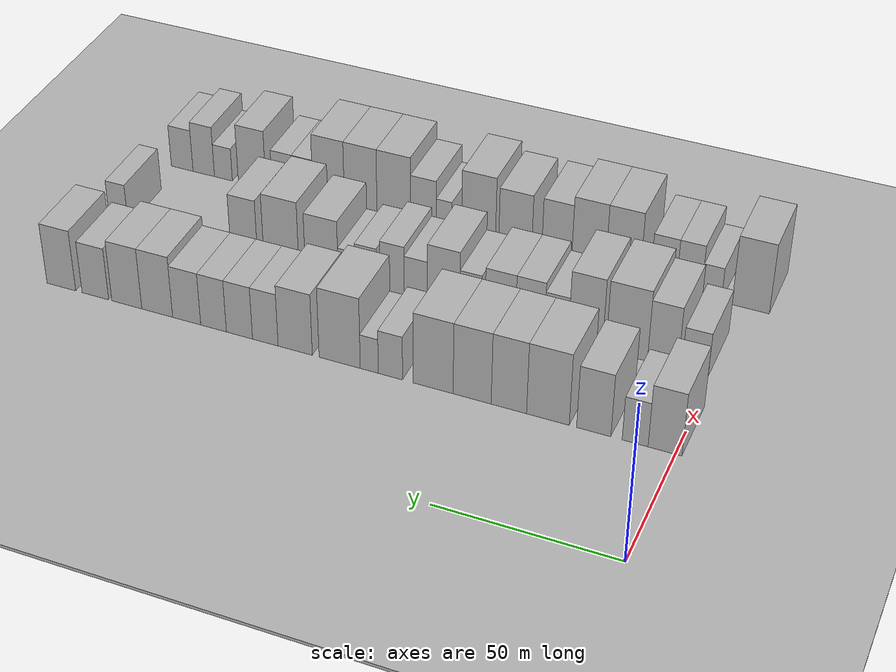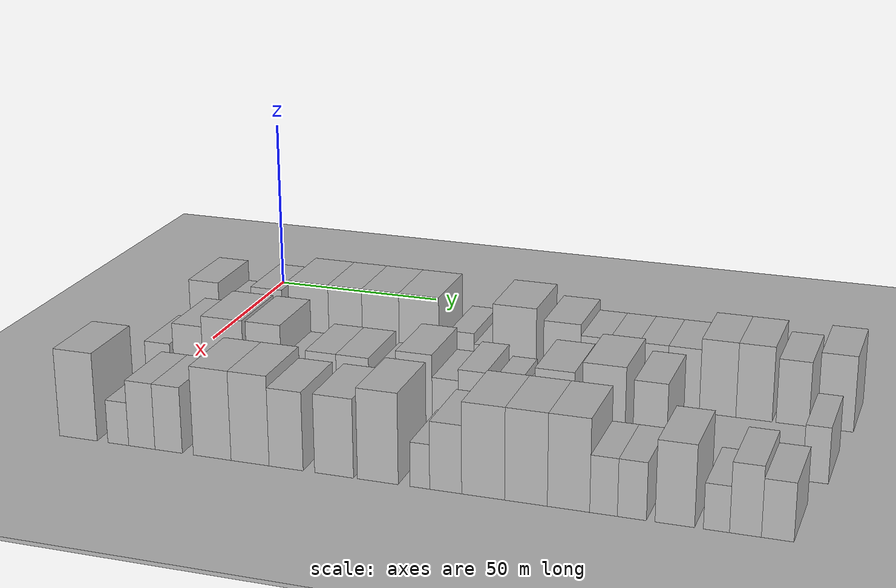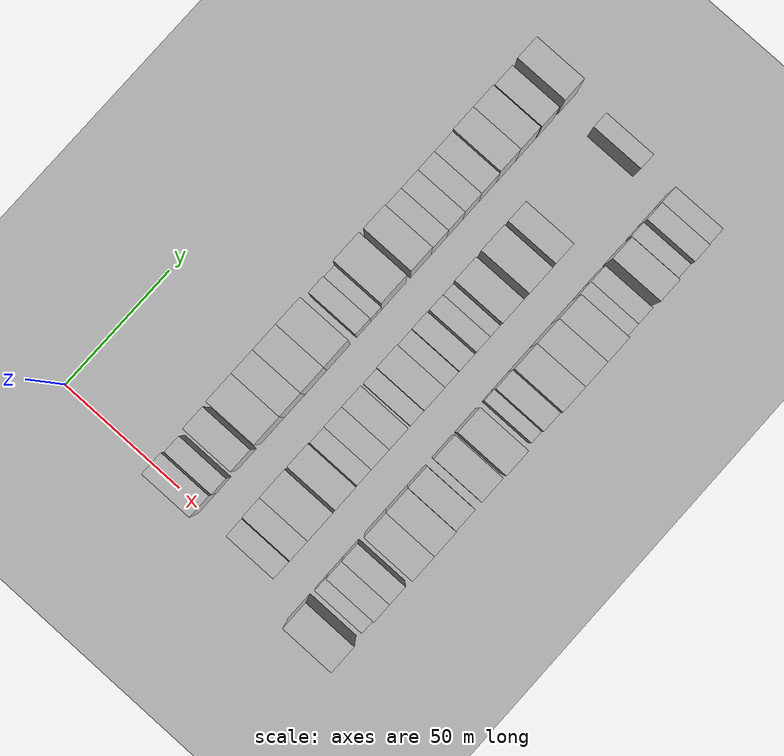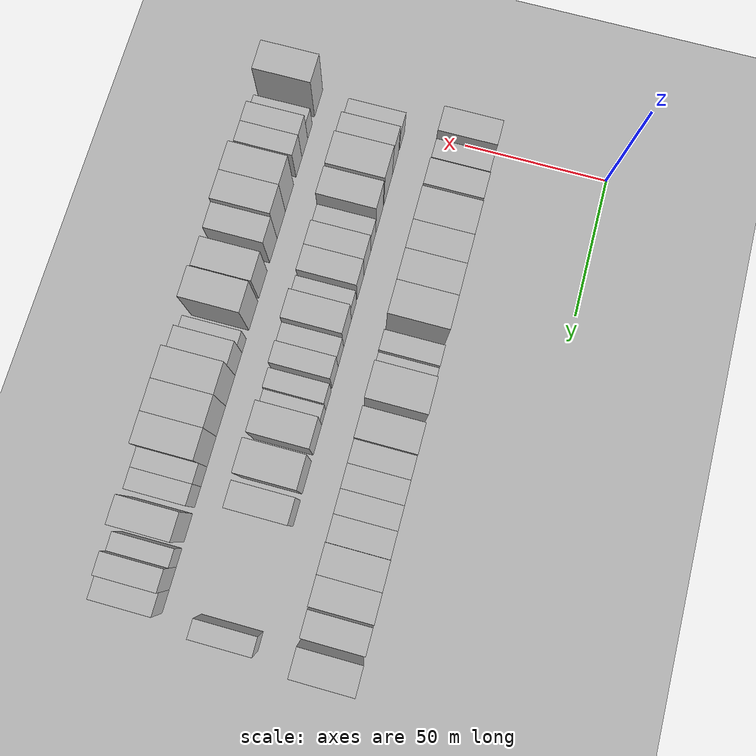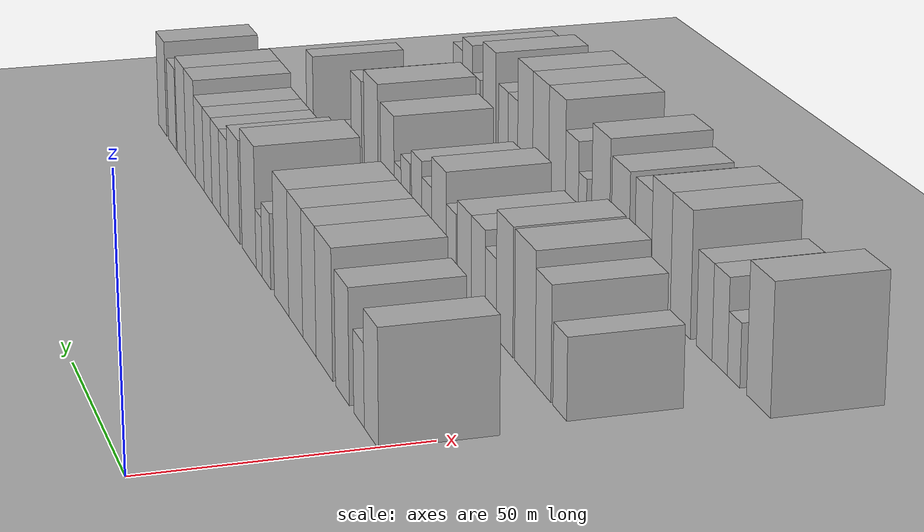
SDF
<sdf version="1.6">
 <world name="default">
  <include><name>ground_plane_1</name><uri>model://HANNAS_ground_plane</uri></include>
  <include>
   <name>ground_plane_2</name>
   <uri>model://HANNAS_ground_plane</uri>
   <pose>100 0 0  0 0 0</pose>
  </include>
  <model name="building_39">
   <static>1</static>
   <pose>50.0000 2.6917 0 0.000000 0.000000 0.000000</pose>
   <link name="link">
    <pose>0 0 10.50 0 0 0</pose>
    <collision name="collision"><geometry><box><size>20.0000 8.9184 21.0000</size></box></geometry></collision>
    <visual name="visual">
     <cast_shadows>0</cast_shadows>
     <geometry><box><size>20.0000 8.9184 21.0000</size></box></geometry>
     <material>
      <script>
       <uri>model://HANNAS_wall/materials/scripts</uri>
       <uri>model://HANNAS_wall/materials/textures</uri>
       <name>vrc/HANNAS_wall</name>
      </script>
     </material>
    </visual>
   </link>
  </model>
  <model name="building_40">
   <static>1</static>
   <pose>50.0000 10.5797 0 0.000000 0.000000 0.000000</pose>
   <link name="link">
    <pose>0 0 7.50 0 0 0</pose>
    <collision name="collision"><geometry><box><size>20.0000 6.8577 15.0000</size></box></geometry></collision>
    <visual name="visual">
     <cast_shadows>0</cast_shadows>
     <geometry><box><size>20.0000 6.8577 15.0000</size></box></geometry>
     <material>
      <script>
       <uri>model://HANNAS_wall/materials/scripts</uri>
       <uri>model://HANNAS_wall/materials/textures</uri>
       <name>vrc/HANNAS_wall</name>
      </script>
     </material>
    </visual>
   </link>
  </model>
  <model name="building_41">
   <static>1</static>
   <pose>50.0000 21.6097 0 0.000000 0.000000 0.000000</pose>
   <link name="link">
    <pose>0 0 10.50 0 0 0</pose>
    <collision name="collision"><geometry><box><size>20.0000 9.2021 21.0000</size></box></geometry></collision>
    <visual name="visual">
     <cast_shadows>0</cast_shadows>
     <geometry><box><size>20.0000 9.2021 21.0000</size></box></geometry>
     <material>
      <script>
       <uri>model://HANNAS_wall/materials/scripts</uri>
       <uri>model://HANNAS_wall/materials/textures</uri>
       <name>vrc/HANNAS_wall</name>
      </script>
     </material>
    </visual>
   </link>
  </model>
  <model name="building_42">
   <static>1</static>
   <pose>50.0000 34.0214 0 0.000000 0.000000 0.000000</pose>
   <link name="link">
    <pose>0 0 12.00 0 0 0</pose>
    <collision name="collision"><geometry><box><size>20.0000 11.6214 24.0000</size></box></geometry></collision>
    <visual name="visual">
     <cast_shadows>0</cast_shadows>
     <geometry><box><size>20.0000 11.6214 24.0000</size></box></geometry>
     <material>
      <script>
       <uri>model://HANNAS_wall/materials/scripts</uri>
       <uri>model://HANNAS_wall/materials/textures</uri>
       <name>vrc/HANNAS_wall</name>
      </script>
     </material>
    </visual>
   </link>
  </model>
  <model name="building_43">
   <static>1</static>
   <pose>50.0000 44.7159 0 0.000000 0.000000 0.000000</pose>
   <link name="link">
    <pose>0 0 12.00 0 0 0</pose>
    <collision name="collision"><geometry><box><size>20.0000 9.7676 24.0000</size></box></geometry></collision>
    <visual name="visual">
     <cast_shadows>0</cast_shadows>
     <geometry><box><size>20.0000 9.7676 24.0000</size></box></geometry>
     <material>
      <script>
       <uri>model://HANNAS_wall/materials/scripts</uri>
       <uri>model://HANNAS_wall/materials/textures</uri>
       <name>vrc/HANNAS_wall</name>
      </script>
     </material>
    </visual>
   </link>
  </model>
  <model name="building_44">
   <static>1</static>
   <pose>50.0000 54.9095 0 0.000000 0.000000 0.000000</pose>
   <link name="link">
    <pose>0 0 12.00 0 0 0</pose>
    <collision name="collision"><geometry><box><size>20.0000 10.6195 24.0000</size></box></geometry></collision>
    <visual name="visual">
     <cast_shadows>0</cast_shadows>
     <geometry><box><size>20.0000 10.6195 24.0000</size></box></geometry>
     <material>
      <script>
       <uri>model://HANNAS_wall/materials/scripts</uri>
       <uri>model://HANNAS_wall/materials/textures</uri>
       <name>vrc/HANNAS_wall</name>
      </script>
     </material>
    </visual>
   </link>
  </model>
  <model name="building_45">
   <static>1</static>
   <pose>50.0000 65.8652 0 0.000000 0.000000 0.000000</pose>
   <link name="link">
    <pose>0 0 12.00 0 0 0</pose>
    <collision name="collision"><geometry><box><size>20.0000 11.2919 24.0000</size></box></geometry></collision>
    <visual name="visual">
     <cast_shadows>0</cast_shadows>
     <geometry><box><size>20.0000 11.2919 24.0000</size></box></geometry>
     <material>
      <script>
       <uri>model://HANNAS_wall/materials/scripts</uri>
       <uri>model://HANNAS_wall/materials/textures</uri>
       <name>vrc/HANNAS_wall</name>
      </script>
     </material>
    </visual>
   </link>
  </model>
  <model name="building_46">
   <static>1</static>
   <pose>50.0000 77.9838 0 0.000000 0.000000 0.000000</pose>
   <link name="link">
    <pose>0 0 7.50 0 0 0</pose>
    <collision name="collision"><geometry><box><size>20.0000 6.9453 15.0000</size></box></geometry></collision>
    <visual name="visual">
     <cast_shadows>0</cast_shadows>
     <geometry><box><size>20.0000 6.9453 15.0000</size></box></geometry>
     <material>
      <script>
       <uri>model://HANNAS_wall/materials/scripts</uri>
       <uri>model://HANNAS_wall/materials/textures</uri>
       <name>vrc/HANNAS_wall</name>
      </script>
     </material>
    </visual>
   </link>
  </model>
  <model name="building_47">
   <static>1</static>
   <pose>50.0000 84.0495 0 0.000000 0.000000 0.000000</pose>
   <link name="link">
    <pose>0 0 6.00 0 0 0</pose>
    <collision name="collision"><geometry><box><size>20.0000 5.1862 12.0000</size></box></geometry></collision>
    <visual name="visual">
     <cast_shadows>0</cast_shadows>
     <geometry><box><size>20.0000 5.1862 12.0000</size></box></geometry>
     <material>
      <script>
       <uri>model://HANNAS_wall/materials/scripts</uri>
       <uri>model://HANNAS_wall/materials/textures</uri>
       <name>vrc/HANNAS_wall</name>
      </script>
     </material>
    </visual>
   </link>
  </model>
  <model name="building_48">
   <static>1</static>
   <pose>50.0000 92.6302 0 0.000000 0.000000 0.000000</pose>
   <link name="link">
    <pose>0 0 12.00 0 0 0</pose>
    <collision name="collision"><geometry><box><size>20.0000 11.9751 24.0000</size></box></geometry></collision>
    <visual name="visual">
     <cast_shadows>0</cast_shadows>
     <geometry><box><size>20.0000 11.9751 24.0000</size></box></geometry>
     <material>
      <script>
       <uri>model://HANNAS_wall/materials/scripts</uri>
       <uri>model://HANNAS_wall/materials/textures</uri>
       <name>vrc/HANNAS_wall</name>
      </script>
     </material>
    </visual>
   </link>
  </model>
  <model name="building_49">
   <static>1</static>
   <pose>50.0000 105.6577 0 0.000000 0.000000 0.000000</pose>
   <link name="link">
    <pose>0 0 10.50 0 0 0</pose>
    <collision name="collision"><geometry><box><size>20.0000 10.0800 21.0000</size></box></geometry></collision>
    <visual name="visual">
     <cast_shadows>0</cast_shadows>
     <geometry><box><size>20.0000 10.0800 21.0000</size></box></geometry>
     <material>
      <script>
       <uri>model://HANNAS_wall/materials/scripts</uri>
       <uri>model://HANNAS_wall/materials/textures</uri>
       <name>vrc/HANNAS_wall</name>
      </script>
     </material>
    </visual>
   </link>
  </model>
  <model name="building_50">
   <static>1</static>
   <pose>50.0000 114.5167 0 0.000000 0.000000 0.000000</pose>
   <link name="link">
    <pose>0 0 9.00 0 0 0</pose>
    <collision name="collision"><geometry><box><size>20.0000 7.6378 18.0000</size></box></geometry></collision>
    <visual name="visual">
     <cast_shadows>0</cast_shadows>
     <geometry><box><size>20.0000 7.6378 18.0000</size></box></geometry>
     <material>
      <script>
       <uri>model://HANNAS_wall/materials/scripts</uri>
       <uri>model://HANNAS_wall/materials/textures</uri>
       <name>vrc/HANNAS_wall</name>
      </script>
     </material>
    </visual>
   </link>
  </model>
  <model name="building_51">
   <static>1</static>
   <pose>50.0000 122.2608 0 0.000000 0.000000 0.000000</pose>
   <link name="link">
    <pose>0 0 9.00 0 0 0</pose>
    <collision name="collision"><geometry><box><size>20.0000 7.8504 18.0000</size></box></geometry></collision>
    <visual name="visual">
     <cast_shadows>0</cast_shadows>
     <geometry><box><size>20.0000 7.8504 18.0000</size></box></geometry>
     <material>
      <script>
       <uri>model://HANNAS_wall/materials/scripts</uri>
       <uri>model://HANNAS_wall/materials/textures</uri>
       <name>vrc/HANNAS_wall</name>
      </script>
     </material>
    </visual>
   </link>
  </model>
  <model name="building_52">
   <static>1</static>
   <pose>50.0000 130.0872 0 0.000000 0.000000 0.000000</pose>
   <link name="link">
    <pose>0 0 9.00 0 0 0</pose>
    <collision name="collision"><geometry><box><size>20.0000 7.8025 18.0000</size></box></geometry></collision>
    <visual name="visual">
     <cast_shadows>0</cast_shadows>
     <geometry><box><size>20.0000 7.8025 18.0000</size></box></geometry>
     <material>
      <script>
       <uri>model://HANNAS_wall/materials/scripts</uri>
       <uri>model://HANNAS_wall/materials/textures</uri>
       <name>vrc/HANNAS_wall</name>
      </script>
     </material>
    </visual>
   </link>
  </model>
  <model name="building_53">
   <static>1</static>
   <pose>50.0000 138.2810 0 0.000000 0.000000 0.000000</pose>
   <link name="link">
    <pose>0 0 9.00 0 0 0</pose>
    <collision name="collision"><geometry><box><size>20.0000 8.5850 18.0000</size></box></geometry></collision>
    <visual name="visual">
     <cast_shadows>0</cast_shadows>
     <geometry><box><size>20.0000 8.5850 18.0000</size></box></geometry>
     <material>
      <script>
       <uri>model://HANNAS_wall/materials/scripts</uri>
       <uri>model://HANNAS_wall/materials/textures</uri>
       <name>vrc/HANNAS_wall</name>
      </script>
     </material>
    </visual>
   </link>
  </model>
  <model name="building_54">
   <static>1</static>
   <pose>50.0000 147.3408 0 0.000000 0.000000 0.000000</pose>
   <link name="link">
    <pose>0 0 10.50 0 0 0</pose>
    <collision name="collision"><geometry><box><size>20.0000 9.5347 21.0000</size></box></geometry></collision>
    <visual name="visual">
     <cast_shadows>0</cast_shadows>
     <geometry><box><size>20.0000 9.5347 21.0000</size></box></geometry>
     <material>
      <script>
       <uri>model://HANNAS_wall/materials/scripts</uri>
       <uri>model://HANNAS_wall/materials/textures</uri>
       <name>vrc/HANNAS_wall</name>
      </script>
     </material>
    </visual>
   </link>
  </model>
  <model name="building_55">
   <static>1</static>
   <pose>50.0000 156.7847 0 0.000000 0.000000 0.000000</pose>
   <link name="link">
    <pose>0 0 10.50 0 0 0</pose>
    <collision name="collision"><geometry><box><size>20.0000 9.3532 21.0000</size></box></geometry></collision>
    <visual name="visual">
     <cast_shadows>0</cast_shadows>
     <geometry><box><size>20.0000 9.3532 21.0000</size></box></geometry>
     <material>
      <script>
       <uri>model://HANNAS_wall/materials/scripts</uri>
       <uri>model://HANNAS_wall/materials/textures</uri>
       <name>vrc/HANNAS_wall</name>
      </script>
     </material>
    </visual>
   </link>
  </model>
  <model name="building_56">
   <static>1</static>
   <pose>50.0000 166.6585 0 0.000000 0.000000 0.000000</pose>
   <link name="link">
    <pose>0 0 9.00 0 0 0</pose>
    <collision name="collision"><geometry><box><size>20.0000 8.3943 18.0000</size></box></geometry></collision>
    <visual name="visual">
     <cast_shadows>0</cast_shadows>
     <geometry><box><size>20.0000 8.3943 18.0000</size></box></geometry>
     <material>
      <script>
       <uri>model://HANNAS_wall/materials/scripts</uri>
       <uri>model://HANNAS_wall/materials/textures</uri>
       <name>vrc/HANNAS_wall</name>
      </script>
     </material>
    </visual>
   </link>
  </model>
  <model name="building_57">
   <static>1</static>
   <pose>50.0000 177.4432 0 0.000000 0.000000 0.000000</pose>
   <link name="link">
    <pose>0 0 10.50 0 0 0</pose>
    <collision name="collision"><geometry><box><size>20.0000 9.1752 21.0000</size></box></geometry></collision>
    <visual name="visual">
     <cast_shadows>0</cast_shadows>
     <geometry><box><size>20.0000 9.1752 21.0000</size></box></geometry>
     <material>
      <script>
       <uri>model://HANNAS_wall/materials/scripts</uri>
       <uri>model://HANNAS_wall/materials/textures</uri>
       <name>vrc/HANNAS_wall</name>
      </script>
     </material>
    </visual>
   </link>
  </model>
  <model name="building_112">
   <static>1</static>
   <pose>82.0000 4.3826 0 0.000000 0.000000 0.000000</pose>
   <link name="link">
    <pose>0 0 7.50 0 0 0</pose>
    <collision name="collision"><geometry><box><size>20.0000 7.2562 15.0000</size></box></geometry></collision>
    <visual name="visual">
     <cast_shadows>0</cast_shadows>
     <geometry><box><size>20.0000 7.2562 15.0000</size></box></geometry>
     <material>
      <script>
       <uri>model://HANNAS_wall/materials/scripts</uri>
       <uri>model://HANNAS_wall/materials/textures</uri>
       <name>vrc/HANNAS_wall</name>
      </script>
     </material>
    </visual>
   </link>
  </model>
  <model name="building_113">
   <static>1</static>
   <pose>82.0000 13.2403 0 0.000000 0.000000 0.000000</pose>
   <link name="link">
    <pose>0 0 10.50 0 0 0</pose>
    <collision name="collision"><geometry><box><size>20.0000 8.4592 21.0000</size></box></geometry></collision>
    <visual name="visual">
     <cast_shadows>0</cast_shadows>
     <geometry><box><size>20.0000 8.4592 21.0000</size></box></geometry>
     <material>
      <script>
       <uri>model://HANNAS_wall/materials/scripts</uri>
       <uri>model://HANNAS_wall/materials/textures</uri>
       <name>vrc/HANNAS_wall</name>
      </script>
     </material>
    </visual>
   </link>
  </model>
  <model name="building_114">
   <static>1</static>
   <pose>82.0000 23.2498 0 0.000000 0.000000 0.000000</pose>
   <link name="link">
    <pose>0 0 12.00 0 0 0</pose>
    <collision name="collision"><geometry><box><size>20.0000 11.5598 24.0000</size></box></geometry></collision>
    <visual name="visual">
     <cast_shadows>0</cast_shadows>
     <geometry><box><size>20.0000 11.5598 24.0000</size></box></geometry>
     <material>
      <script>
       <uri>model://HANNAS_wall/materials/scripts</uri>
       <uri>model://HANNAS_wall/materials/textures</uri>
       <name>vrc/HANNAS_wall</name>
      </script>
     </material>
    </visual>
   </link>
  </model>
  <model name="building_115">
   <static>1</static>
   <pose>82.0000 34.8578 0 0.000000 0.000000 0.000000</pose>
   <link name="link">
    <pose>0 0 12.00 0 0 0</pose>
    <collision name="collision"><geometry><box><size>20.0000 9.6561 24.0000</size></box></geometry></collision>
    <visual name="visual">
     <cast_shadows>0</cast_shadows>
     <geometry><box><size>20.0000 9.6561 24.0000</size></box></geometry>
     <material>
      <script>
       <uri>model://HANNAS_wall/materials/scripts</uri>
       <uri>model://HANNAS_wall/materials/textures</uri>
       <name>vrc/HANNAS_wall</name>
      </script>
     </material>
    </visual>
   </link>
  </model>
  <model name="building_116">
   <static>1</static>
   <pose>82.0000 43.1021 0 0.000000 0.000000 0.000000</pose>
   <link name="link">
    <pose>0 0 7.50 0 0 0</pose>
    <collision name="collision"><geometry><box><size>20.0000 6.8324 15.0000</size></box></geometry></collision>
    <visual name="visual">
     <cast_shadows>0</cast_shadows>
     <geometry><box><size>20.0000 6.8324 15.0000</size></box></geometry>
     <material>
      <script>
       <uri>model://HANNAS_wall/materials/scripts</uri>
       <uri>model://HANNAS_wall/materials/textures</uri>
       <name>vrc/HANNAS_wall</name>
      </script>
     </material>
    </visual>
   </link>
  </model>
  <model name="building_117">
   <static>1</static>
   <pose>82.0000 50.6947 0 0.000000 0.000000 0.000000</pose>
   <link name="link">
    <pose>0 0 9.00 0 0 0</pose>
    <collision name="collision"><geometry><box><size>20.0000 8.3528 18.0000</size></box></geometry></collision>
    <visual name="visual">
     <cast_shadows>0</cast_shadows>
     <geometry><box><size>20.0000 8.3528 18.0000</size></box></geometry>
     <material>
      <script>
       <uri>model://HANNAS_wall/materials/scripts</uri>
       <uri>model://HANNAS_wall/materials/textures</uri>
       <name>vrc/HANNAS_wall</name>
      </script>
     </material>
    </visual>
   </link>
  </model>
  <model name="building_118">
   <static>1</static>
   <pose>82.0000 59.3096 0 0.000000 0.000000 0.000000</pose>
   <link name="link">
    <pose>0 0 9.00 0 0 0</pose>
    <collision name="collision"><geometry><box><size>20.0000 8.8769 18.0000</size></box></geometry></collision>
    <visual name="visual">
     <cast_shadows>0</cast_shadows>
     <geometry><box><size>20.0000 8.8769 18.0000</size></box></geometry>
     <material>
      <script>
       <uri>model://HANNAS_wall/materials/scripts</uri>
       <uri>model://HANNAS_wall/materials/textures</uri>
       <name>vrc/HANNAS_wall</name>
      </script>
     </material>
    </visual>
   </link>
  </model>
  <model name="building_119">
   <static>1</static>
   <pose>82.0000 67.9297 0 0.000000 0.000000 0.000000</pose>
   <link name="link">
    <pose>0 0 7.50 0 0 0</pose>
    <collision name="collision"><geometry><box><size>20.0000 6.3634 15.0000</size></box></geometry></collision>
    <visual name="visual">
     <cast_shadows>0</cast_shadows>
     <geometry><box><size>20.0000 6.3634 15.0000</size></box></geometry>
     <material>
      <script>
       <uri>model://HANNAS_wall/materials/scripts</uri>
       <uri>model://HANNAS_wall/materials/textures</uri>
       <name>vrc/HANNAS_wall</name>
      </script>
     </material>
    </visual>
   </link>
  </model>
  <model name="building_120">
   <static>1</static>
   <pose>82.0000 75.9143 0 0.000000 0.000000 0.000000</pose>
   <link name="link">
    <pose>0 0 10.50 0 0 0</pose>
    <collision name="collision"><geometry><box><size>20.0000 9.6057 21.0000</size></box></geometry></collision>
    <visual name="visual">
     <cast_shadows>0</cast_shadows>
     <geometry><box><size>20.0000 9.6057 21.0000</size></box></geometry>
     <material>
      <script>
       <uri>model://HANNAS_wall/materials/scripts</uri>
       <uri>model://HANNAS_wall/materials/textures</uri>
       <name>vrc/HANNAS_wall</name>
      </script>
     </material>
    </visual>
   </link>
  </model>
  <model name="building_121">
   <static>1</static>
   <pose>82.0000 84.1537 0 0.000000 0.000000 0.000000</pose>
   <link name="link">
    <pose>0 0 7.50 0 0 0</pose>
    <collision name="collision"><geometry><box><size>20.0000 6.8732 15.0000</size></box></geometry></collision>
    <visual name="visual">
     <cast_shadows>0</cast_shadows>
     <geometry><box><size>20.0000 6.8732 15.0000</size></box></geometry>
     <material>
      <script>
       <uri>model://HANNAS_wall/materials/scripts</uri>
       <uri>model://HANNAS_wall/materials/textures</uri>
       <name>vrc/HANNAS_wall</name>
      </script>
     </material>
    </visual>
   </link>
  </model>
  <model name="building_122">
   <static>1</static>
   <pose>82.0000 91.2247 0 0.000000 0.000000 0.000000</pose>
   <link name="link">
    <pose>0 0 9.00 0 0 0</pose>
    <collision name="collision"><geometry><box><size>20.0000 7.2689 18.0000</size></box></geometry></collision>
    <visual name="visual">
     <cast_shadows>0</cast_shadows>
     <geometry><box><size>20.0000 7.2689 18.0000</size></box></geometry>
     <material>
      <script>
       <uri>model://HANNAS_wall/materials/scripts</uri>
       <uri>model://HANNAS_wall/materials/textures</uri>
       <name>vrc/HANNAS_wall</name>
      </script>
     </material>
    </visual>
   </link>
  </model>
  <model name="building_123">
   <static>1</static>
   <pose>82.0000 99.1350 0 0.000000 0.000000 0.000000</pose>
   <link name="link">
    <pose>0 0 7.50 0 0 0</pose>
    <collision name="collision"><geometry><box><size>20.0000 6.5516 15.0000</size></box></geometry></collision>
    <visual name="visual">
     <cast_shadows>0</cast_shadows>
     <geometry><box><size>20.0000 6.5516 15.0000</size></box></geometry>
     <material>
      <script>
       <uri>model://HANNAS_wall/materials/scripts</uri>
       <uri>model://HANNAS_wall/materials/textures</uri>
       <name>vrc/HANNAS_wall</name>
      </script>
     </material>
    </visual>
   </link>
  </model>
  <model name="building_124">
   <static>1</static>
   <pose>82.0000 104.9525 0 0.000000 0.000000 0.000000</pose>
   <link name="link">
    <pose>0 0 6.00 0 0 0</pose>
    <collision name="collision"><geometry><box><size>20.0000 5.0835 12.0000</size></box></geometry></collision>
    <visual name="visual">
     <cast_shadows>0</cast_shadows>
     <geometry><box><size>20.0000 5.0835 12.0000</size></box></geometry>
     <material>
      <script>
       <uri>model://HANNAS_wall/materials/scripts</uri>
       <uri>model://HANNAS_wall/materials/textures</uri>
       <name>vrc/HANNAS_wall</name>
      </script>
     </material>
    </visual>
   </link>
  </model>
  <model name="building_125">
   <static>1</static>
   <pose>82.0000 112.5419 0 0.000000 0.000000 0.000000</pose>
   <link name="link">
    <pose>0 0 10.50 0 0 0</pose>
    <collision name="collision"><geometry><box><size>20.0000 10.0952 21.0000</size></box></geometry></collision>
    <visual name="visual">
     <cast_shadows>0</cast_shadows>
     <geometry><box><size>20.0000 10.0952 21.0000</size></box></geometry>
     <material>
      <script>
       <uri>model://HANNAS_wall/materials/scripts</uri>
       <uri>model://HANNAS_wall/materials/textures</uri>
       <name>vrc/HANNAS_wall</name>
      </script>
     </material>
    </visual>
   </link>
  </model>
  <model name="building_126">
   <static>1</static>
   <pose>82.0000 125.0340 0 0.000000 0.000000 0.000000</pose>
   <link name="link">
    <pose>0 0 12.00 0 0 0</pose>
    <collision name="collision"><geometry><box><size>20.0000 10.8890 24.0000</size></box></geometry></collision>
    <visual name="visual">
     <cast_shadows>0</cast_shadows>
     <geometry><box><size>20.0000 10.8890 24.0000</size></box></geometry>
     <material>
      <script>
       <uri>model://HANNAS_wall/materials/scripts</uri>
       <uri>model://HANNAS_wall/materials/textures</uri>
       <name>vrc/HANNAS_wall</name>
      </script>
     </material>
    </visual>
   </link>
  </model>
  <model name="building_127">
   <static>1</static>
   <pose>82.0000 136.6963 0 0.000000 0.000000 0.000000</pose>
   <link name="link">
    <pose>0 0 10.50 0 0 0</pose>
    <collision name="collision"><geometry><box><size>20.0000 8.4355 21.0000</size></box></geometry></collision>
    <visual name="visual">
     <cast_shadows>0</cast_shadows>
     <geometry><box><size>20.0000 8.4355 21.0000</size></box></geometry>
     <material>
      <script>
       <uri>model://HANNAS_wall/materials/scripts</uri>
       <uri>model://HANNAS_wall/materials/textures</uri>
       <name>vrc/HANNAS_wall</name>
      </script>
     </material>
    </visual>
   </link>
  </model>
  <model name="building_128">
   <static>1</static>
   <pose>82.0000 177.0990 0 0.000000 0.000000 0.000000</pose>
   <link name="link">
    <pose>0 0 7.50 0 0 0</pose>
    <collision name="collision"><geometry><box><size>20.0000 6.1233 15.0000</size></box></geometry></collision>
    <visual name="visual">
     <cast_shadows>0</cast_shadows>
     <geometry><box><size>20.0000 6.1233 15.0000</size></box></geometry>
     <material>
      <script>
       <uri>model://HANNAS_wall/materials/scripts</uri>
       <uri>model://HANNAS_wall/materials/textures</uri>
       <name>vrc/HANNAS_wall</name>
      </script>
     </material>
    </visual>
   </link>
  </model>
  <model name="building_186">
   <static>1</static>
   <pose>114.0000 -1.9671 0 0.000000 0.000000 0.000000</pose>
   <link name="link">
    <pose>0 0 12.00 0 0 0</pose>
    <collision name="collision"><geometry><box><size>20.0000 10.5625 24.0000</size></box></geometry></collision>
    <visual name="visual">
     <cast_shadows>0</cast_shadows>
     <geometry><box><size>20.0000 10.5625 24.0000</size></box></geometry>
     <material>
      <script>
       <uri>model://HANNAS_wall/materials/scripts</uri>
       <uri>model://HANNAS_wall/materials/textures</uri>
       <name>vrc/HANNAS_wall</name>
      </script>
     </material>
    </visual>
   </link>
  </model>
  <model name="building_187">
   <static>1</static>
   <pose>114.0000 9.1977 0 0.000000 0.000000 0.000000</pose>
   <link name="link">
    <pose>0 0 6.00 0 0 0</pose>
    <collision name="collision"><geometry><box><size>20.0000 5.7671 12.0000</size></box></geometry></collision>
    <visual name="visual">
     <cast_shadows>0</cast_shadows>
     <geometry><box><size>20.0000 5.7671 12.0000</size></box></geometry>
     <material>
      <script>
       <uri>model://HANNAS_wall/materials/scripts</uri>
       <uri>model://HANNAS_wall/materials/textures</uri>
       <name>vrc/HANNAS_wall</name>
      </script>
     </material>
    </visual>
   </link>
  </model>
  <model name="building_188">
   <static>1</static>
   <pose>114.0000 15.7009 0 0.000000 0.000000 0.000000</pose>
   <link name="link">
    <pose>0 0 9.00 0 0 0</pose>
    <collision name="collision"><geometry><box><size>20.0000 7.2394 18.0000</size></box></geometry></collision>
    <visual name="visual">
     <cast_shadows>0</cast_shadows>
     <geometry><box><size>20.0000 7.2394 18.0000</size></box></geometry>
     <material>
      <script>
       <uri>model://HANNAS_wall/materials/scripts</uri>
       <uri>model://HANNAS_wall/materials/textures</uri>
       <name>vrc/HANNAS_wall</name>
      </script>
     </material>
    </visual>
   </link>
  </model>
  <model name="building_189">
   <static>1</static>
   <pose>114.0000 23.0431 0 0.000000 0.000000 0.000000</pose>
   <link name="link">
    <pose>0 0 9.00 0 0 0</pose>
    <collision name="collision"><geometry><box><size>20.0000 7.4450 18.0000</size></box></geometry></collision>
    <visual name="visual">
     <cast_shadows>0</cast_shadows>
     <geometry><box><size>20.0000 7.4450 18.0000</size></box></geometry>
     <material>
      <script>
       <uri>model://HANNAS_wall/materials/scripts</uri>
       <uri>model://HANNAS_wall/materials/textures</uri>
       <name>vrc/HANNAS_wall</name>
      </script>
     </material>
    </visual>
   </link>
  </model>
  <model name="building_190">
   <static>1</static>
   <pose>114.0000 34.8369 0 0.000000 0.000000 0.000000</pose>
   <link name="link">
    <pose>0 0 12.00 0 0 0</pose>
    <collision name="collision"><geometry><box><size>20.0000 10.1426 24.0000</size></box></geometry></collision>
    <visual name="visual">
     <cast_shadows>0</cast_shadows>
     <geometry><box><size>20.0000 10.1426 24.0000</size></box></geometry>
     <material>
      <script>
       <uri>model://HANNAS_wall/materials/scripts</uri>
       <uri>model://HANNAS_wall/materials/textures</uri>
       <name>vrc/HANNAS_wall</name>
      </script>
     </material>
    </visual>
   </link>
  </model>
  <model name="building_191">
   <static>1</static>
   <pose>114.0000 44.9533 0 0.000000 0.000000 0.000000</pose>
   <link name="link">
    <pose>0 0 12.00 0 0 0</pose>
    <collision name="collision"><geometry><box><size>20.0000 10.0902 24.0000</size></box></geometry></collision>
    <visual name="visual">
     <cast_shadows>0</cast_shadows>
     <geometry><box><size>20.0000 10.0902 24.0000</size></box></geometry>
     <material>
      <script>
       <uri>model://HANNAS_wall/materials/scripts</uri>
       <uri>model://HANNAS_wall/materials/textures</uri>
       <name>vrc/HANNAS_wall</name>
      </script>
     </material>
    </visual>
   </link>
  </model>
  <model name="building_192">
   <static>1</static>
   <pose>114.0000 54.4568 0 0.000000 0.000000 0.000000</pose>
   <link name="link">
    <pose>0 0 10.50 0 0 0</pose>
    <collision name="collision"><geometry><box><size>20.0000 8.9169 21.0000</size></box></geometry></collision>
    <visual name="visual">
     <cast_shadows>0</cast_shadows>
     <geometry><box><size>20.0000 8.9169 21.0000</size></box></geometry>
     <material>
      <script>
       <uri>model://HANNAS_wall/materials/scripts</uri>
       <uri>model://HANNAS_wall/materials/textures</uri>
       <name>vrc/HANNAS_wall</name>
      </script>
     </material>
    </visual>
   </link>
  </model>
  <model name="building_193">
   <static>1</static>
   <pose>114.0000 66.9170 0 0.000000 0.000000 0.000000</pose>
   <link name="link">
    <pose>0 0 10.50 0 0 0</pose>
    <collision name="collision"><geometry><box><size>20.0000 10.0036 21.0000</size></box></geometry></collision>
    <visual name="visual">
     <cast_shadows>0</cast_shadows>
     <geometry><box><size>20.0000 10.0036 21.0000</size></box></geometry>
     <material>
      <script>
       <uri>model://HANNAS_wall/materials/scripts</uri>
       <uri>model://HANNAS_wall/materials/textures</uri>
       <name>vrc/HANNAS_wall</name>
      </script>
     </material>
    </visual>
   </link>
  </model>
  <model name="building_194">
   <static>1</static>
   <pose>114.0000 78.1064 0 0.000000 0.000000 0.000000</pose>
   <link name="link">
    <pose>0 0 12.00 0 0 0</pose>
    <collision name="collision"><geometry><box><size>20.0000 10.3752 24.0000</size></box></geometry></collision>
    <visual name="visual">
     <cast_shadows>0</cast_shadows>
     <geometry><box><size>20.0000 10.3752 24.0000</size></box></geometry>
     <material>
      <script>
       <uri>model://HANNAS_wall/materials/scripts</uri>
       <uri>model://HANNAS_wall/materials/textures</uri>
       <name>vrc/HANNAS_wall</name>
      </script>
     </material>
    </visual>
   </link>
  </model>
  <model name="building_195">
   <static>1</static>
   <pose>114.0000 88.7348 0 0.000000 0.000000 0.000000</pose>
   <link name="link">
    <pose>0 0 6.00 0 0 0</pose>
    <collision name="collision"><geometry><box><size>20.0000 4.8815 12.0000</size></box></geometry></collision>
    <visual name="visual">
     <cast_shadows>0</cast_shadows>
     <geometry><box><size>20.0000 4.8815 12.0000</size></box></geometry>
     <material>
      <script>
       <uri>model://HANNAS_wall/materials/scripts</uri>
       <uri>model://HANNAS_wall/materials/textures</uri>
       <name>vrc/HANNAS_wall</name>
      </script>
     </material>
    </visual>
   </link>
  </model>
  <model name="building_196">
   <static>1</static>
   <pose>114.0000 95.1485 0 0.000000 0.000000 0.000000</pose>
   <link name="link">
    <pose>0 0 9.00 0 0 0</pose>
    <collision name="collision"><geometry><box><size>20.0000 7.9459 18.0000</size></box></geometry></collision>
    <visual name="visual">
     <cast_shadows>0</cast_shadows>
     <geometry><box><size>20.0000 7.9459 18.0000</size></box></geometry>
     <material>
      <script>
       <uri>model://HANNAS_wall/materials/scripts</uri>
       <uri>model://HANNAS_wall/materials/textures</uri>
       <name>vrc/HANNAS_wall</name>
      </script>
     </material>
    </visual>
   </link>
  </model>
  <model name="building_197">
   <static>1</static>
   <pose>114.0000 104.3905 0 0.000000 0.000000 0.000000</pose>
   <link name="link">
    <pose>0 0 12.00 0 0 0</pose>
    <collision name="collision"><geometry><box><size>20.0000 10.5380 24.0000</size></box></geometry></collision>
    <visual name="visual">
     <cast_shadows>0</cast_shadows>
     <geometry><box><size>20.0000 10.5380 24.0000</size></box></geometry>
     <material>
      <script>
       <uri>model://HANNAS_wall/materials/scripts</uri>
       <uri>model://HANNAS_wall/materials/textures</uri>
       <name>vrc/HANNAS_wall</name>
      </script>
     </material>
    </visual>
   </link>
  </model>
  <model name="building_198">
   <static>1</static>
   <pose>114.0000 114.8303 0 0.000000 0.000000 0.000000</pose>
   <link name="link">
    <pose>0 0 12.00 0 0 0</pose>
    <collision name="collision"><geometry><box><size>20.0000 10.3416 24.0000</size></box></geometry></collision>
    <visual name="visual">
     <cast_shadows>0</cast_shadows>
     <geometry><box><size>20.0000 10.3416 24.0000</size></box></geometry>
     <material>
      <script>
       <uri>model://HANNAS_wall/materials/scripts</uri>
       <uri>model://HANNAS_wall/materials/textures</uri>
       <name>vrc/HANNAS_wall</name>
      </script>
     </material>
    </visual>
   </link>
  </model>
  <model name="building_199">
   <static>1</static>
   <pose>114.0000 125.0613 0 0.000000 0.000000 0.000000</pose>
   <link name="link">
    <pose>0 0 12.00 0 0 0</pose>
    <collision name="collision"><geometry><box><size>20.0000 10.1205 24.0000</size></box></geometry></collision>
    <visual name="visual">
     <cast_shadows>0</cast_shadows>
     <geometry><box><size>20.0000 10.1205 24.0000</size></box></geometry>
     <material>
      <script>
       <uri>model://HANNAS_wall/materials/scripts</uri>
       <uri>model://HANNAS_wall/materials/textures</uri>
       <name>vrc/HANNAS_wall</name>
      </script>
     </material>
    </visual>
   </link>
  </model>
  <model name="building_200">
   <static>1</static>
   <pose>114.0000 133.3882 0 0.000000 0.000000 0.000000</pose>
   <link name="link">
    <pose>0 0 7.50 0 0 0</pose>
    <collision name="collision"><geometry><box><size>20.0000 6.5331 15.0000</size></box></geometry></collision>
    <visual name="visual">
     <cast_shadows>0</cast_shadows>
     <geometry><box><size>20.0000 6.5331 15.0000</size></box></geometry>
     <material>
      <script>
       <uri>model://HANNAS_wall/materials/scripts</uri>
       <uri>model://HANNAS_wall/materials/textures</uri>
       <name>vrc/HANNAS_wall</name>
      </script>
     </material>
    </visual>
   </link>
  </model>
  <model name="building_201">
   <static>1</static>
   <pose>114.0000 140.0542 0 0.000000 0.000000 0.000000</pose>
   <link name="link">
    <pose>0 0 7.50 0 0 0</pose>
    <collision name="collision"><geometry><box><size>20.0000 6.7989 15.0000</size></box></geometry></collision>
    <visual name="visual">
     <cast_shadows>0</cast_shadows>
     <geometry><box><size>20.0000 6.7989 15.0000</size></box></geometry>
     <material>
      <script>
       <uri>model://HANNAS_wall/materials/scripts</uri>
       <uri>model://HANNAS_wall/materials/textures</uri>
       <name>vrc/HANNAS_wall</name>
      </script>
     </material>
    </visual>
   </link>
  </model>
  <model name="building_202">
   <static>1</static>
   <pose>114.0000 150.0223 0 0.000000 0.000000 0.000000</pose>
   <link name="link">
    <pose>0 0 10.50 0 0 0</pose>
    <collision name="collision"><geometry><box><size>20.0000 9.1374 21.0000</size></box></geometry></collision>
    <visual name="visual">
     <cast_shadows>0</cast_shadows>
     <geometry><box><size>20.0000 9.1374 21.0000</size></box></geometry>
     <material>
      <script>
       <uri>model://HANNAS_wall/materials/scripts</uri>
       <uri>model://HANNAS_wall/materials/textures</uri>
       <name>vrc/HANNAS_wall</name>
      </script>
     </material>
    </visual>
   </link>
  </model>
  <model name="building_203">
   <static>1</static>
   <pose>114.0000 159.5664 0 0.000000 0.000000 0.000000</pose>
   <link name="link">
    <pose>0 0 6.00 0 0 0</pose>
    <collision name="collision"><geometry><box><size>20.0000 5.9508 12.0000</size></box></geometry></collision>
    <visual name="visual">
     <cast_shadows>0</cast_shadows>
     <geometry><box><size>20.0000 5.9508 12.0000</size></box></geometry>
     <material>
      <script>
       <uri>model://HANNAS_wall/materials/scripts</uri>
       <uri>model://HANNAS_wall/materials/textures</uri>
       <name>vrc/HANNAS_wall</name>
      </script>
     </material>
    </visual>
   </link>
  </model>
  <model name="building_204">
   <static>1</static>
   <pose>114.0000 166.1437 0 0.000000 0.000000 0.000000</pose>
   <link name="link">
    <pose>0 0 9.00 0 0 0</pose>
    <collision name="collision"><geometry><box><size>20.0000 7.2038 18.0000</size></box></geometry></collision>
    <visual name="visual">
     <cast_shadows>0</cast_shadows>
     <geometry><box><size>20.0000 7.2038 18.0000</size></box></geometry>
     <material>
      <script>
       <uri>model://HANNAS_wall/materials/scripts</uri>
       <uri>model://HANNAS_wall/materials/textures</uri>
       <name>vrc/HANNAS_wall</name>
      </script>
     </material>
    </visual>
   </link>
  </model>
  <model name="building_205">
   <static>1</static>
   <pose>114.0000 173.4007 0 0.000000 0.000000 0.000000</pose>
   <link name="link">
    <pose>0 0 7.50 0 0 0</pose>
    <collision name="collision"><geometry><box><size>20.0000 7.3102 15.0000</size></box></geometry></collision>
    <visual name="visual">
     <cast_shadows>0</cast_shadows>
     <geometry><box><size>20.0000 7.3102 15.0000</size></box></geometry>
     <material>
      <script>
       <uri>model://HANNAS_wall/materials/scripts</uri>
       <uri>model://HANNAS_wall/materials/textures</uri>
       <name>vrc/HANNAS_wall</name>
      </script>
     </material>
    </visual>
   </link>
  </model>
 </world>
</sdf>
